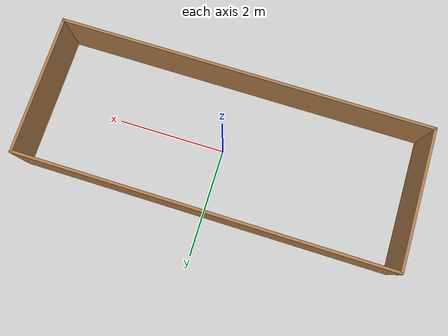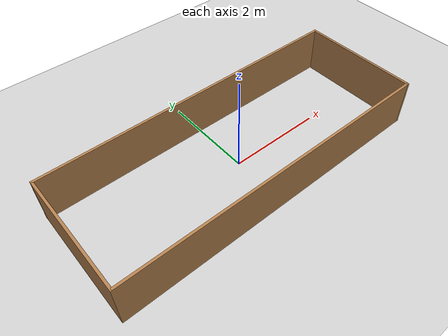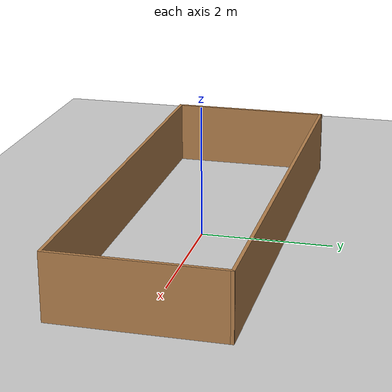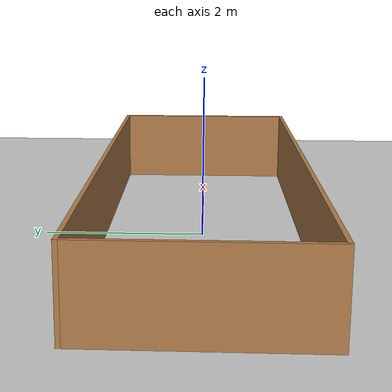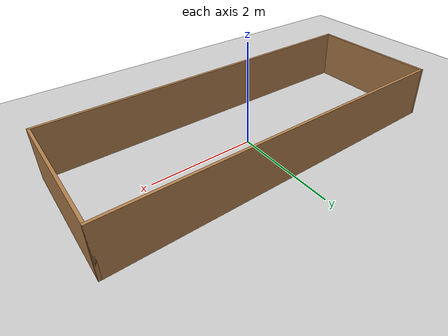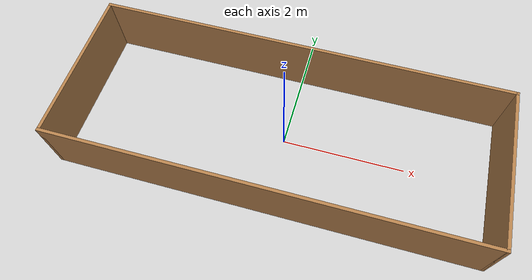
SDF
<sdf version="1.7">
 <world name="default">
  <light name="sun" type="directional">
   <pose>0 0 10 0 -0 0</pose>
   <diffuse>0.8 0.8 0.8 1</diffuse>
   <specular>0.2 0.2 0.2 1</specular>
   <attenuation>
    <range>1000</range>
    <constant>0.9</constant>
    <linear>0.01</linear>
    <quadratic>0.001</quadratic>
   </attenuation>
   <direction>-0.5 0.1 -0.9</direction>
   <spot><inner_angle>0</inner_angle><outer_angle>0</outer_angle><falloff>0</falloff></spot>
  </light>
  <model name="ground_plane">
   <static>1</static>
   <link name="link">
    <collision name="collision">
     <geometry><plane><normal>0 0 1</normal><size>100 100</size></plane></geometry>
     <surface>
      <contact><collide_bitmask>65535</collide_bitmask></contact>
      <friction><ode><mu>100</mu><mu2>50</mu2></ode></friction>
     </surface>
    </collision>
    <visual name="visual">
     <cast_shadows>0</cast_shadows>
     <geometry><plane><normal>0 0 1</normal><size>100 100</size></plane></geometry>
     <material>
      <script><uri>file://media/materials/scripts/gazebo.material</uri><name>Gazebo/Grey</name></script>
     </material>
    </visual>
   </link>
  </model>
  <gravity>0 0 -9.8</gravity>
  <magnetic_field>6e-06 2.3e-05 -4.2e-05</magnetic_field>
  <atmosphere type="adiabatic"/>
  <physics type="ode">
   <max_step_size>0.001</max_step_size>
   <real_time_factor>1</real_time_factor>
   <real_time_update_rate>1000</real_time_update_rate>
  </physics>
  <scene><ambient>0.4 0.4 0.4 1</ambient><background>0.7 0.7 0.7 1</background><shadows>1</shadows></scene>
  <spherical_coordinates>
   <surface_model>EARTH_WGS84</surface_model>
   <latitude_deg>0</latitude_deg>
   <longitude_deg>0</longitude_deg>
   <elevation>0</elevation>
   <heading_deg>0</heading_deg>
  </spherical_coordinates>
  <include><uri>model://arena_walls</uri></include>
 </world>
</sdf>

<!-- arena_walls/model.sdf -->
<sdf version='1.7'>
  <model name='arena_walls'>
    <pose>-0.025 0 0 0 -0 0</pose>
    <link name='Wall_12'>
      <collision name='Wall_12_Collision'>
        <geometry>
          <box>
            <size>6.8 0.05 1</size>
          </box>
        </geometry>
        <pose>0 0 0.5 0 -0 0</pose>
      </collision>
      <visual name='Wall_12_Visual'>
        <pose>0 0 0.5 0 -0 0</pose>
        <geometry>
          <box>
            <size>6.8 0.05 1</size>
          </box>
        </geometry>
        <material>
          <script>
            <name>Gazebo/Wood</name>
          </script>
          <ambient>1 1 1 1</ambient>
        </material>
        <meta>
          <layer>0</layer>
        </meta>
      </visual>
      <pose>0 -1.25 0 0 -0 0</pose>
    </link>
    <link name='Wall_26'>
      <collision name='Wall_26_Collision'>
        <geometry>
          <box>
            <size>6.8 0.05 1</size>
          </box>
        </geometry>
        <pose>0 0 0.5 0 -0 0</pose>
      </collision>
      <visual name='Wall_26_Visual'>
        <pose>0 0 0.5 0 -0 0</pose>
        <geometry>
          <box>
            <size>6.8 0.05 1</size>
          </box>
        </geometry>
        <material>
          <script>
            <name>Gazebo/Wood</name>
          </script>
          <ambient>1 1 1 1</ambient>
        </material>
        <meta>
          <layer>0</layer>
        </meta>
      </visual>
      <pose>0 1.25 0 0 -0 0</pose>
    </link>
    <link name='Wall_30'>
      <collision name='Wall_30_Collision'>
        <geometry>
          <box>
            <size>2.55 0.05 1</size>
          </box>
        </geometry>
        <pose>0 0 0.5 0 -0 0</pose>
      </collision>
      <visual name='Wall_30_Visual'>
        <pose>0 0 0.5 0 -0 0</pose>
        <geometry>
          <box>
            <size>2.55 0.05 1</size>
          </box>
        </geometry>
        <material>
          <script>
            <name>Gazebo/Wood</name>
          </script>
          <ambient>1 1 1 1</ambient>
        </material>
        <meta>
          <layer>0</layer>
        </meta>
      </visual>
      <pose>-3.375 0 0 0 -0 -1.5708</pose>
    </link>
    <link name='Wall_32'>
      <collision name='Wall_32_Collision'>
        <geometry>
          <box>
            <size>2.55 0.05 1</size>
          </box>
        </geometry>
        <pose>0 0 0.5 0 -0 0</pose>
      </collision>
      <visual name='Wall_32_Visual'>
        <pose>0 0 0.5 0 -0 0</pose>
        <geometry>
          <box>
            <size>2.55 0.05 1</size>
          </box>
        </geometry>
        <material>
          <script>
            <name>Gazebo/Wood</name>
          </script>
          <ambient>1 1 1 1</ambient>
        </material>
        <meta>
          <layer>0</layer>
        </meta>
      </visual>
      <pose>3.375 0 0 0 -0 1.5708</pose>
    </link>
    <static>1</static>
  </model>
</sdf>
